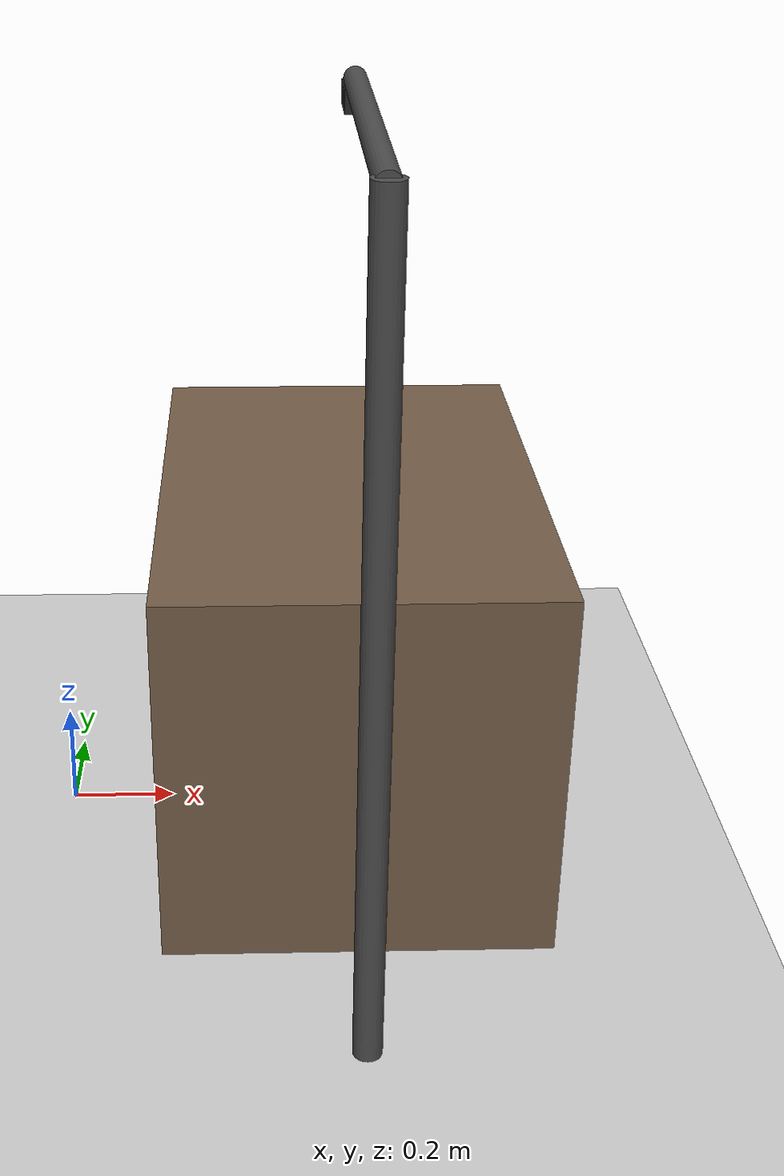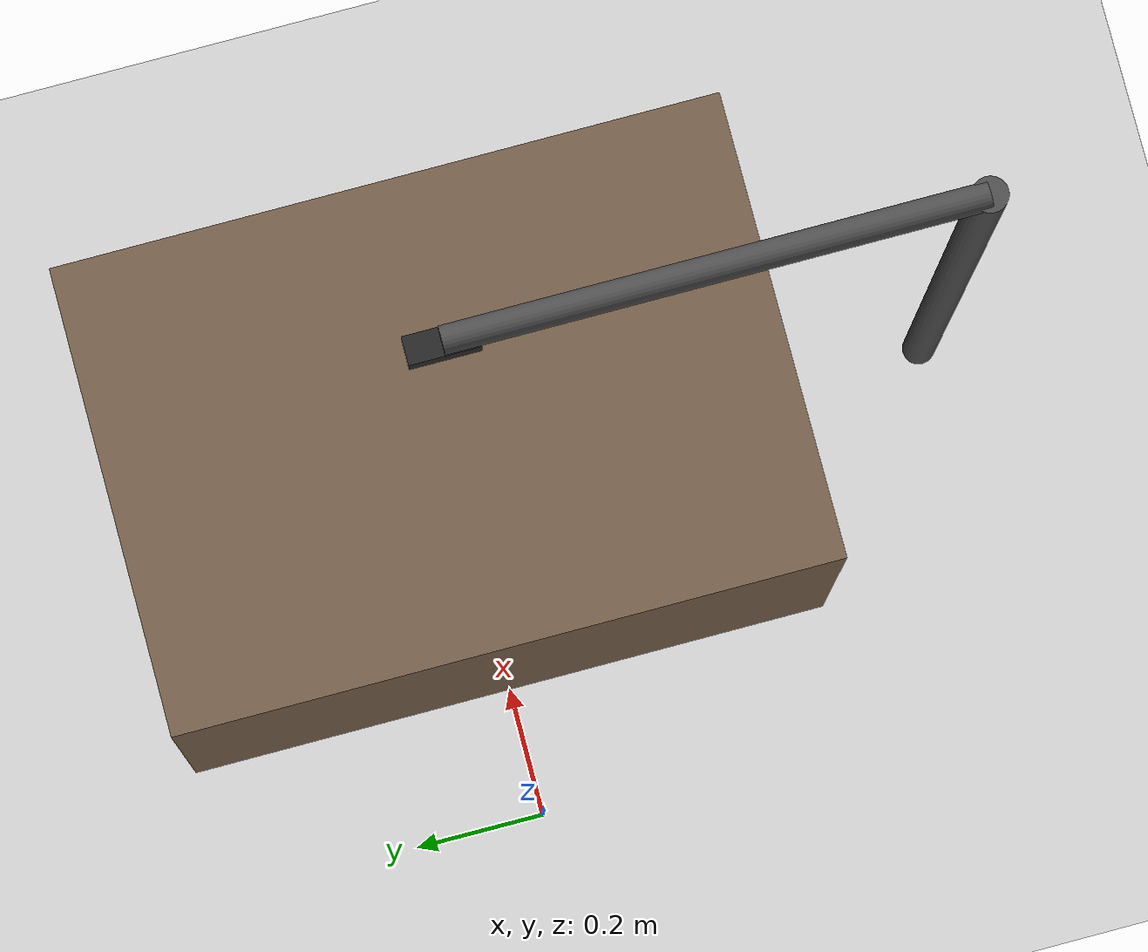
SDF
<?xml version="1.0" ?>
<sdf version="1.8">
  <world name="pick_place">

    <physics name="1ms" type="ignored">
      <max_step_size>0.001</max_step_size>
      <real_time_factor>1.0</real_time_factor>
    </physics>

    <plugin filename="libignition-gazebo-physics-system.so"
            name="ignition::gazebo::systems::Physics"/>
    <plugin filename="libignition-gazebo-user-commands-system.so"
            name="ignition::gazebo::systems::UserCommands"/>
    <plugin filename="libignition-gazebo-scene-broadcaster-system.so"
            name="ignition::gazebo::systems::SceneBroadcaster"/>
    <plugin filename="libignition-gazebo-sensors-system.so"
            name="ignition::gazebo::systems::Sensors">
      <render_engine>ogre2</render_engine>
    </plugin>
    <plugin filename="libignition-gazebo-contact-system.so"
            name="ignition::gazebo::systems::Contact"/>

    <light type="directional" name="sun">
      <cast_shadows>true</cast_shadows>
      <pose>0 0 10 0 0 0</pose>
      <diffuse>0.9 0.9 0.9 1</diffuse>
      <specular>0.3 0.3 0.3 1</specular>
      <direction>-0.4 0.3 -0.9</direction>
    </light>

    <light type="point" name="fill_light">
      <pose>0.5 0 2.0 0 0 0</pose>
      <diffuse>0.5 0.5 0.5 1</diffuse>
      <attenuation>
        <range>8</range>
        <linear>0.2</linear>
      </attenuation>
      <cast_shadows>false</cast_shadows>
    </light>

    <model name="ground_plane">
      <static>true</static>
      <link name="link">
        <collision name="collision">
          <geometry><plane><normal>0 0 1</normal><size>20 20</size></plane></geometry>
        </collision>
        <visual name="visual">
          <geometry><plane><normal>0 0 1</normal><size>20 20</size></plane></geometry>
          <material>
            <ambient>0.75 0.75 0.75 1</ambient>
            <diffuse>0.8 0.8 0.8 1</diffuse>
          </material>
        </visual>
      </link>
    </model>

    <model name="work_table">
      <static>true</static>
      <pose>0.55 0 0.35 0 0 0</pose>
      <link name="link">
        <collision name="collision">
          <geometry><box><size>0.7 1.0 0.7</size></box></geometry>
          <surface>
            <friction><ode><mu>1.2</mu><mu2>1.2</mu2></ode></friction>
          </surface>
        </collision>
        <visual name="visual">
          <geometry><box><size>0.7 1.0 0.7</size></box></geometry>
          <material>
            <ambient>0.35 0.28 0.22 1</ambient>
            <diffuse>0.45 0.36 0.28 1</diffuse>
          </material>
        </visual>
      </link>
    </model>

    <model name="camera_gantry">
      <static>true</static>
      <pose>0.55 -0.75 0 0 0 0</pose>
      <link name="link">
        <visual name="mast">
          <pose>0 0 0.72 0 0 0</pose>
          <geometry><cylinder><radius>0.025</radius><length>1.44</length></cylinder></geometry>
          <material>
            <ambient>0.2 0.2 0.2 1</ambient>
            <diffuse>0.3 0.3 0.3 1</diffuse>
          </material>
        </visual>
        <visual name="arm">
          <pose>0 0.375 1.43 1.5708 0 0</pose>
          <geometry><cylinder><radius>0.02</radius><length>0.75</length></cylinder></geometry>
          <material>
            <ambient>0.2 0.2 0.2 1</ambient>
            <diffuse>0.3 0.3 0.3 1</diffuse>
          </material>
        </visual>
      </link>
    </model>

    <model name="rgbd_camera">
      <static>true</static>
      <pose>0.55 0 1.40 0 1.5708 0</pose>
      <link name="link">
        <visual name="visual">
          <geometry><box><size>0.04 0.10 0.04</size></box></geometry>
          <material>
            <ambient>0.1 0.1 0.1 1</ambient>
            <diffuse>0.15 0.15 0.15 1</diffuse>
          </material>
        </visual>
        <sensor name="rgbd" type="rgbd_camera">
          <update_rate>15</update_rate>
          <always_on>true</always_on>
          <visualize>true</visualize>
          <topic>rgbd</topic>
          <camera>
            <horizontal_fov>1.047</horizontal_fov>
            <image>
              <width>640</width>
              <height>480</height>
              <format>R8G8B8</format>
            </image>
            <clip><near>0.1</near><far>3.0</far></clip>
            <optical_frame_id>camera_optical_frame</optical_frame_id>
          </camera>
        </sensor>
      </link>
    </model>

  </world>
</sdf>
